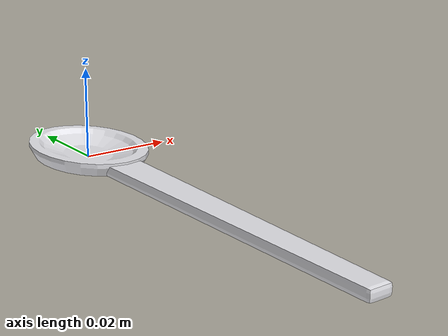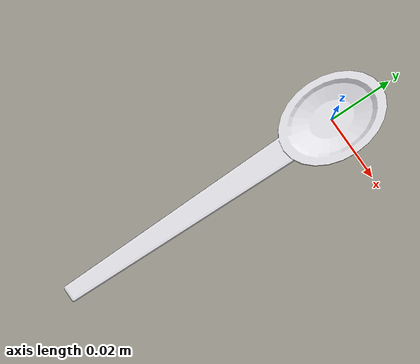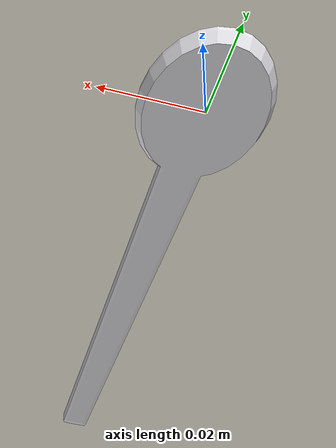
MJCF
<mujoco model="Spoon_2">
  <default>
    <default class="visual">
      <geom group="2" type="mesh" contype="0" conaffinity="0"/>
    </default>
    <default class="collision">
      <geom group="3" type="mesh"/>
    </default>
  </default>
  <asset>
    <material name="Spoon_Silver" specular="0.5" shininess="0.64" rgba="0.900000 0.900000 0.920000 1.000000"/>
    <mesh file="Spoon_2.obj"/>
    <mesh file="Spoon_2_collision_0.obj"/>
    <mesh file="Spoon_2_collision_1.obj"/>
  </asset>
  <worldbody>
    <body name="Spoon_2">
      <geom material="Spoon_Silver" mesh="Spoon_2" class="visual"/>
      <geom mesh="Spoon_2_collision_0" rgba="0.060804206031812025 0.6679579680002741 0.2677230811496104 1" class="collision"/>
      <geom mesh="Spoon_2_collision_1" rgba="0.786779942094248 0.07109148929868259 0.11329494904063808 1" class="collision"/>
    </body>
  </worldbody>
</mujoco>
